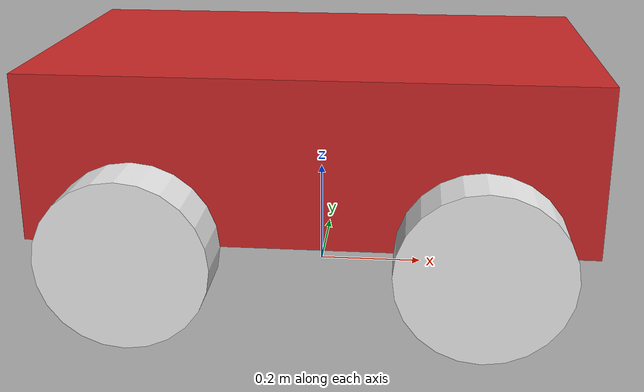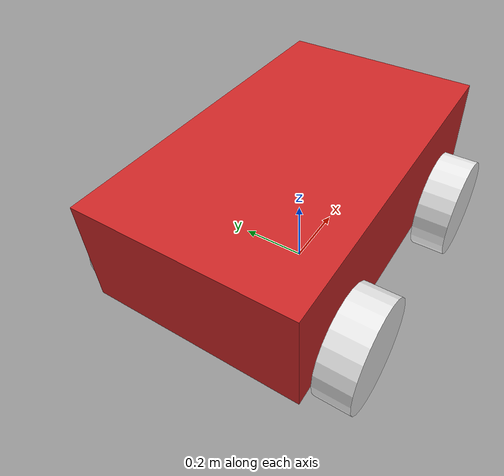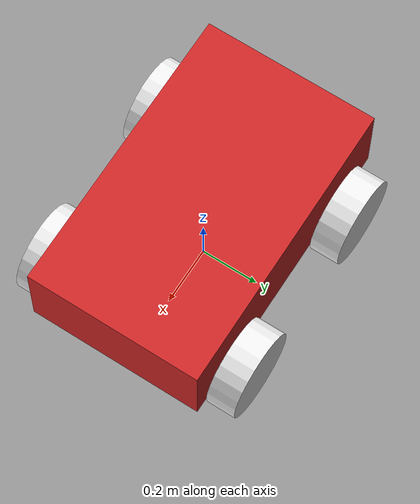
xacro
<?xml version="1.0"?>
<!-- Author: Andrea Gonzalez-->

<robot name="rdt26_robot" xmlns:xacro="http://www.ros.org/wiki/xacro">

<!-- Pi constant -->
<xacro:property name="pi_const" value="3.14159265"/>

<!-- Body dimensions-->
<xacro:property name="a" value="1" />
<xacro:property name="b" value="0.3" />
<xacro:property name="c" value="0.6" />

<!-- Wheel and caster dimensions -->
<!-- Wheel and caster radius -->
<xacro:property name="r" value="0.15" />
<!-- Wheel width-->
<xacro:property name="d" value="0.1" />

<xacro:property name="s1" value="${b/2+r}" />
<xacro:property name="s2" value="${2*r}" />
<xacro:property name="s3" value="${2*r}" />
<xacro:property name="s4" value="${c/2+d/2}" />

<!-- Mass and Inertia-->

<!-- Material density -->
<!-- Body material density -->
<xacro:property name="d1" value="2710.0" />
<!-- Wheel material density -->
<xacro:property name="d2" value="2710.0" />

<!-- Robot body mass, wheel mass -->
<!-- body -->
<xacro:property name="m1" value="${d1*a*b*c}" />
<!-- wheel -->
<xacro:property name="m2" value="${d2*pi_const*r*r*d}" />

<!-- Moments of interia of the robot body -->
<xacro:property name="Ix_body" value="${(1/12)*m1*(b*b+c*c)}" />
<xacro:property name="Iy_body" value="${(1/12)*m1*(a*a+b*b)}" />
<xacro:property name="Iz_body" value="${(1/12)*m1*(a*a+c*c)}" />

<!-- Moments of inertia of the wheel -->
<xacro:property name="Iz_wheel" value="${0.5*m2*r*r}" />
<xacro:property name="I_wheel" value="${(1.0/12.0)*m2*(3.0*r*r+d*d)}" />

<!-- This macro defines the complete inertial section of the robot body -->
<xacro:macro name="inertia_body">
    <inertial>
    <!-- Displacement and orientation of the center of the mass-->
    <origin rpy="0 0 0" xyz="0 0 ${s1}" />
    <mass value="${m1}" />
    <inertia ixx="${Ix_body}" ixy="0.0" ixz="0.0" iyy="${Iy_body}" iyz="0" izz="${Iz_body}" />
    </inertial>
</xacro:macro>

<!-- This macro defines the complete inertial section of the wheel -->
<xacro:macro name="inertia_wheel">
    <inertial>
    <origin rpy="1.570795 0 0" xyz="0 0 0" />
    <mass value="${m2}" />
    <inertia ixx="${I_wheel}" ixy="0.0" ixz="0.0" iyy="${I_wheel}" iyz="0" izz="${Iz_wheel}" />
    </inertial>
</xacro:macro>

<!-- Include addition files-->
<!-- file that defines extra Gazebo options and motion control driver -->
<xacro:include filename="$(find mobile_robot)/model/robot.gazebo" />

<!-- DEFINE LINKS, JOINTS -->

<!-- Fictious link of the robot-->
<link name="base_footprint"> </link>
<joint name="body_link_joint" type="fixed">
    <parent link="base_footprint"/>
    <child link="body_link"/>
</joint>

<!-- Body link of the robot-->
<!-- allows us to render the box in gazebo -->
<link name="body_link">
    <visual>
        <geometry>
            <box size="${a} ${c} ${b}"/>
        </geometry>
    <!-- Displacement and orientation of the geometric center of the link with respect to the link frame body_link_joint -->
    <origin rpy="0.0 0.0 0.0" xyz="0 0 ${s1}" />
    </visual>

    <!-- how much collision space object/robot consumes -->
    <collision>
        <geometry>
            <box size="${a} ${b} ${c}"/>
        </geometry>
        <origin rpy="0.0 0.0 0.0" xyz="0 0 ${s1}" />
    </collision>

    <xacro:inertia_body />
</link>

<!-- Back right wheel of the robot and the joint-->
 <joint name="wheel1_joint" type="continuous">
    <parent link="body_link"/>
    <child link="wheel1_link"/>
    <!-- defined with respect to the coordinate frame of the parent link -->
    <origin xyz="${-s2} ${-s4} ${r}" rpy="0.0 0.0 0.0" />
    <!-- axis of rotation of the wheel -->
    <axis xyz="0.0 1.0 0.0"/>
    <!-- maximum torque -->
    <limit effort="50000" velocity="10"/>
    <dynamics damping="1.0" friction="1.0"/>
 </joint>

 <link name="wheel1_link">
    <visual>
        <origin xyz="0.0 0.0 0.0" rpy="1.570795 0.0 0.0"/>
        <geometry>
            <cylinder radius="${r}" length="${d}"/>
        </geometry>
    </visual>

    <collision>
        <origin xyz="0.0 0.0 0.0" rpy="1.570795 0.0 0.0"/>
        <geometry>
            <cylinder radius="${r}" length="${d}"/>
        </geometry>
    </collision>
    <xacro:inertia_wheel />
</link>

<!-- Back left wheel of the robot and the joint-->
 <joint name="wheel2_joint" type="continuous">
    <parent link="body_link"/>
    <child link="wheel2_link"/>
    <!-- defined with respect to the coordinate frame of the parent link -->
    <origin xyz="${-s2} ${s4} ${r}" rpy="0.0 0.0 0.0" />
    <!-- axis of rotation of the wheel -->
    <axis xyz="0.0 1.0 0.0"/>
    <!-- maximum torque -->
    <limit effort="50000" velocity="10"/>
    <dynamics damping="1.0" friction="1.0"/>
 </joint>

 <link name="wheel2_link">
    <visual>
        <origin xyz="0.0 0.0 0.0" rpy="1.570795 0.0 0.0"/>
        <geometry>
            <cylinder radius="${r}" length="${d}"/>
        </geometry>
    </visual>

    <collision>
        <origin xyz="0.0 0.0 0.0" rpy="1.570795 0.0 0.0"/>
        <geometry>
            <cylinder radius="${r}" length="${d}"/>
        </geometry>
    </collision>
    <xacro:inertia_wheel />
</link>

<!-- Front left wheel of the robot and the joint-->
 <joint name="wheel3_joint" type="continuous">
    <parent link="body_link"/>
    <child link="wheel3_link"/>
    <!-- defined with respect to the coordinate frame of the parent link -->
    <origin xyz="${s3} ${s4} ${r}" rpy="0.0 0.0 0.0" />
    <!-- axis of rotation of the wheel -->
    <axis xyz="0.0 1.0 0.0"/>
    <!-- maximum torque -->
    <limit effort="50000" velocity="10"/>
    <dynamics damping="1.0" friction="1.0"/>
 </joint>

 <link name="wheel3_link">
    <visual>
        <origin xyz="0.0 0.0 0.0" rpy="1.570795 0.0 0.0"/>
        <geometry>
            <cylinder radius="${r}" length="${d}"/>
        </geometry>
    </visual>

    <collision>
        <origin xyz="0.0 0.0 0.0" rpy="1.570795 0.0 0.0"/>
        <geometry>
            <cylinder radius="${r}" length="${d}"/>
        </geometry>
    </collision>
    <xacro:inertia_wheel />
</link>

<!-- Front right wheel of the robot and the joint-->
 <joint name="wheel4_joint" type="continuous">
    <parent link="body_link"/>
    <child link="wheel4_link"/>
    <!-- defined with respect to the coordinate frame of the parent link -->
    <origin xyz="${s3} ${-s4} ${r}" rpy="0.0 0.0 0.0" />
    <!-- axis of rotation of the wheel -->
    <axis xyz="0.0 1.0 0.0"/>
    <!-- maximum torque -->
    <limit effort="50000" velocity="10"/>
    <dynamics damping="1.0" friction="1.0"/>
 </joint>

 <link name="wheel4_link">
    <visual>
        <origin xyz="0.0 0.0 0.0" rpy="1.570795 0.0 0.0"/>
        <geometry>
            <cylinder radius="${r}" length="${d}"/>
        </geometry>
    </visual>

    <collision>
        <origin xyz="0.0 0.0 0.0" rpy="1.570795 0.0 0.0"/>
        <geometry>
            <cylinder radius="${r}" length="${d}"/>
        </geometry>
    </collision>
    <xacro:inertia_wheel />
</link>

</robot>
